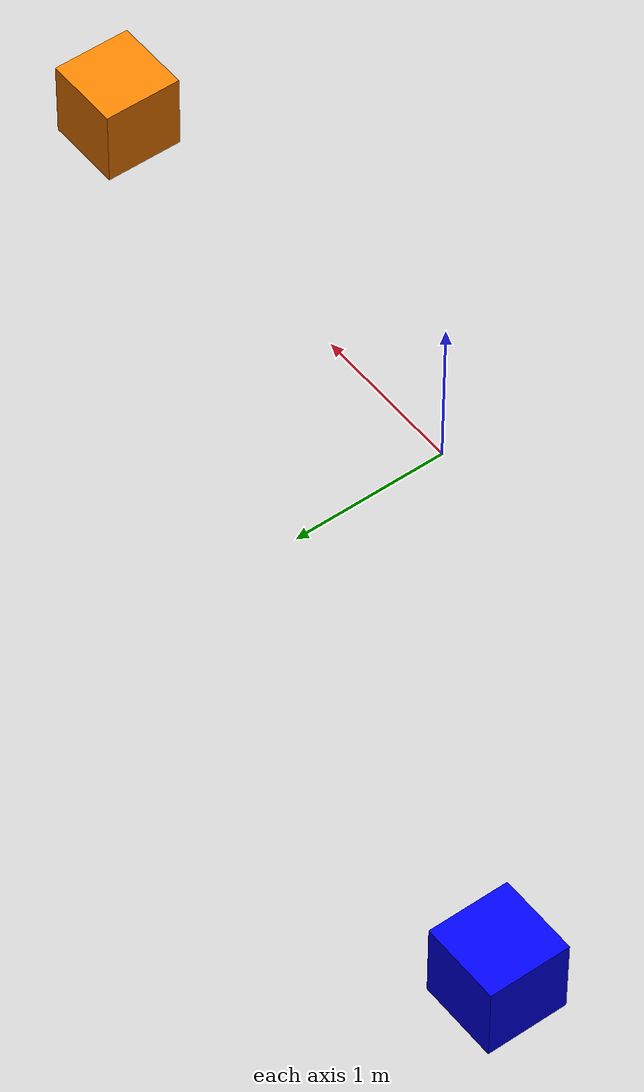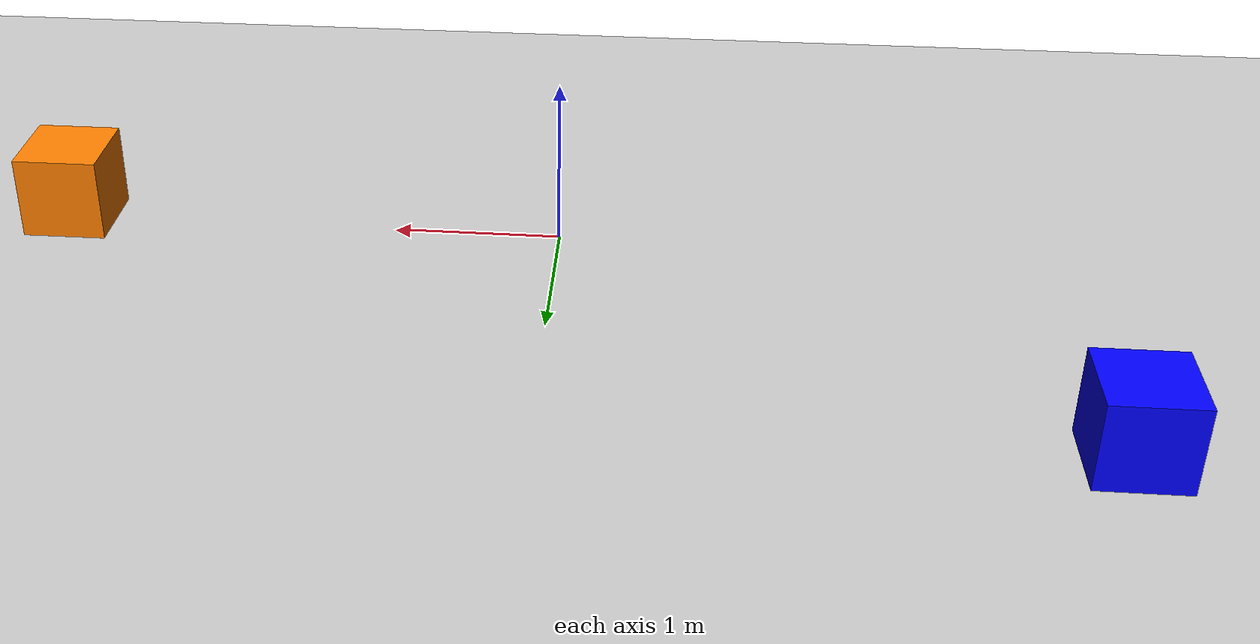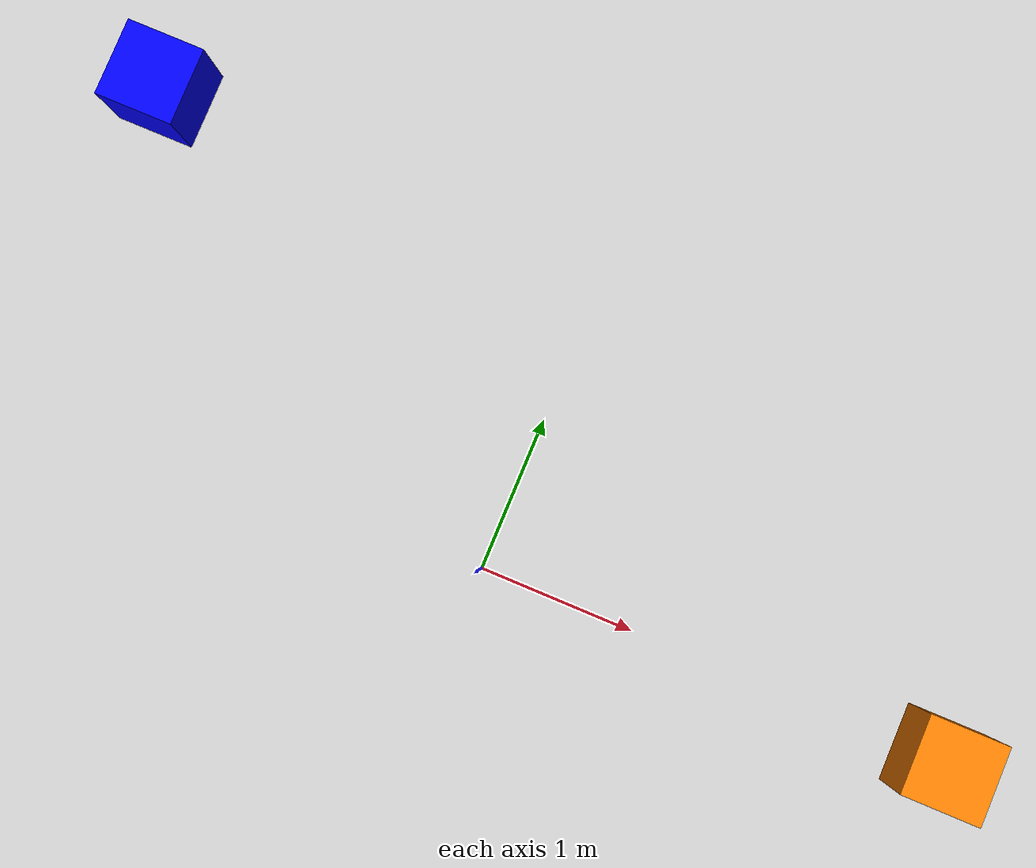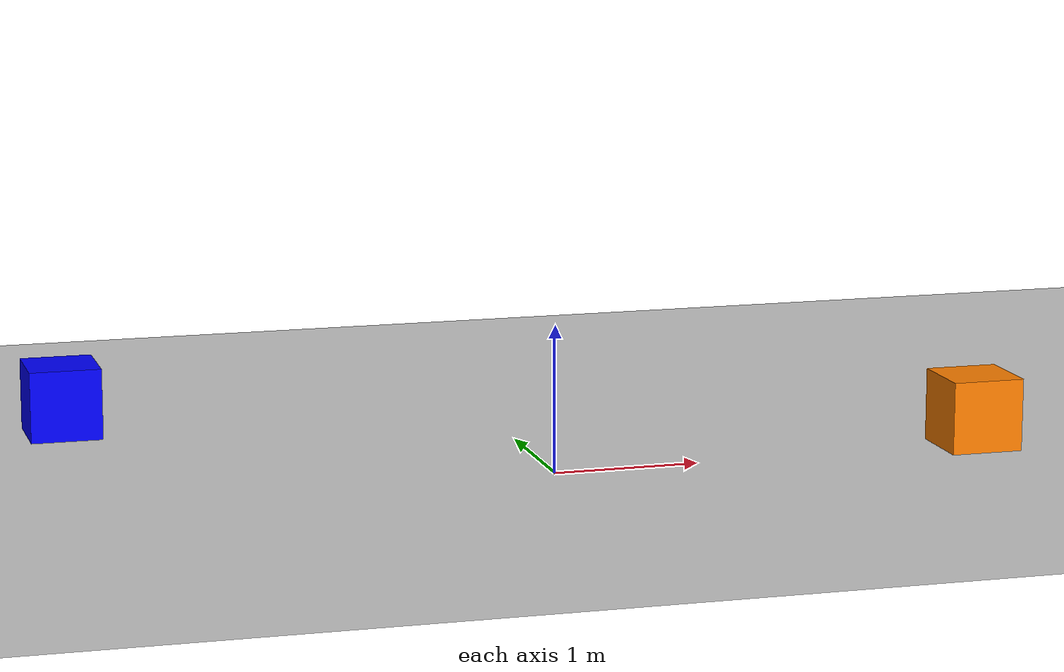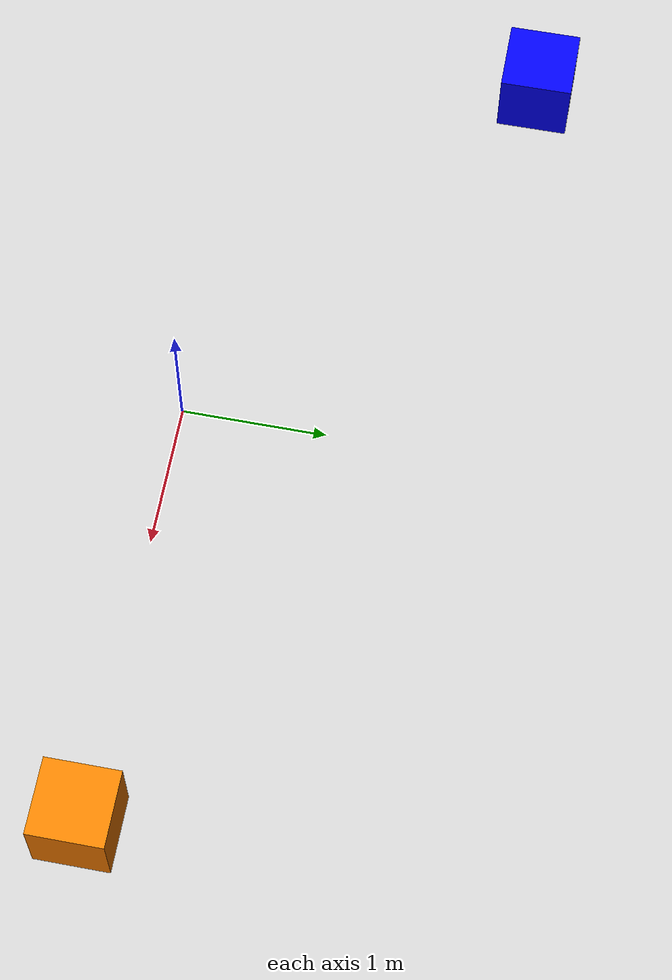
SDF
<?xml version="1.0" ?>
<sdf version="1.6">
  <world name="world_robot">

    <include>
      <uri>model://sun</uri>
    </include>
    <include>
      <uri>model://ground_plane</uri>
    </include>

    <physics type="ode">
      <real_time_update_rate>1000.0</real_time_update_rate>
      <max_step_size>0.001</max_step_size>
    </physics>

    <!-- Rintangan kotak -->
    <model name="rintangan_1">
      <pose>3 0 0.25 0 0 0</pose>
      <static>true</static>
      <link name="link">
        <collision name="collision">
          <geometry><box><size>0.5 0.5 0.5</size></box></geometry>
        </collision>
        <visual name="visual">
          <geometry><box><size>0.5 0.5 0.5</size></box></geometry>
          <material>
            <ambient>1 0.5 0 1</ambient>
            <diffuse>1 0.5 0 1</diffuse>
          </material>
        </visual>
      </link>
    </model>

    <model name="rintangan_2">
      <pose>-3 2 0.25 0 0 0</pose>
      <static>true</static>
      <link name="link">
        <collision name="collision">
          <geometry><box><size>0.5 0.5 0.5</size></box></geometry>
        </collision>
        <visual name="visual">
          <geometry><box><size>0.5 0.5 0.5</size></box></geometry>
          <material>
            <ambient>0 0 1 1</ambient>
            <diffuse>0 0 1 1</diffuse>
          </material>
        </visual>
      </link>
    </model>

    <gui fullscreen="0">
      <camera name="user_camera">
        <pose>5 -5 3 0 0.4 2.4</pose>
        <view_controller>orbit</view_controller>
      </camera>
    </gui>

  </world>
</sdf>
